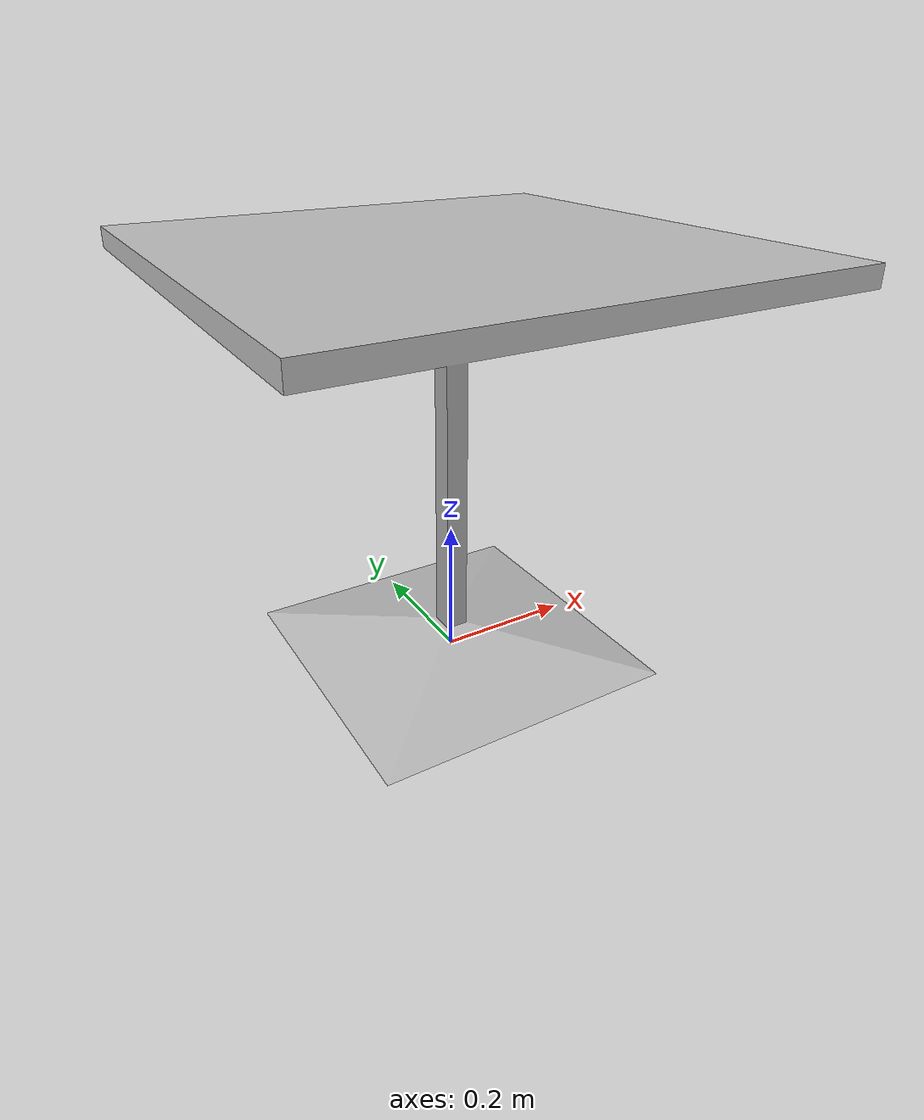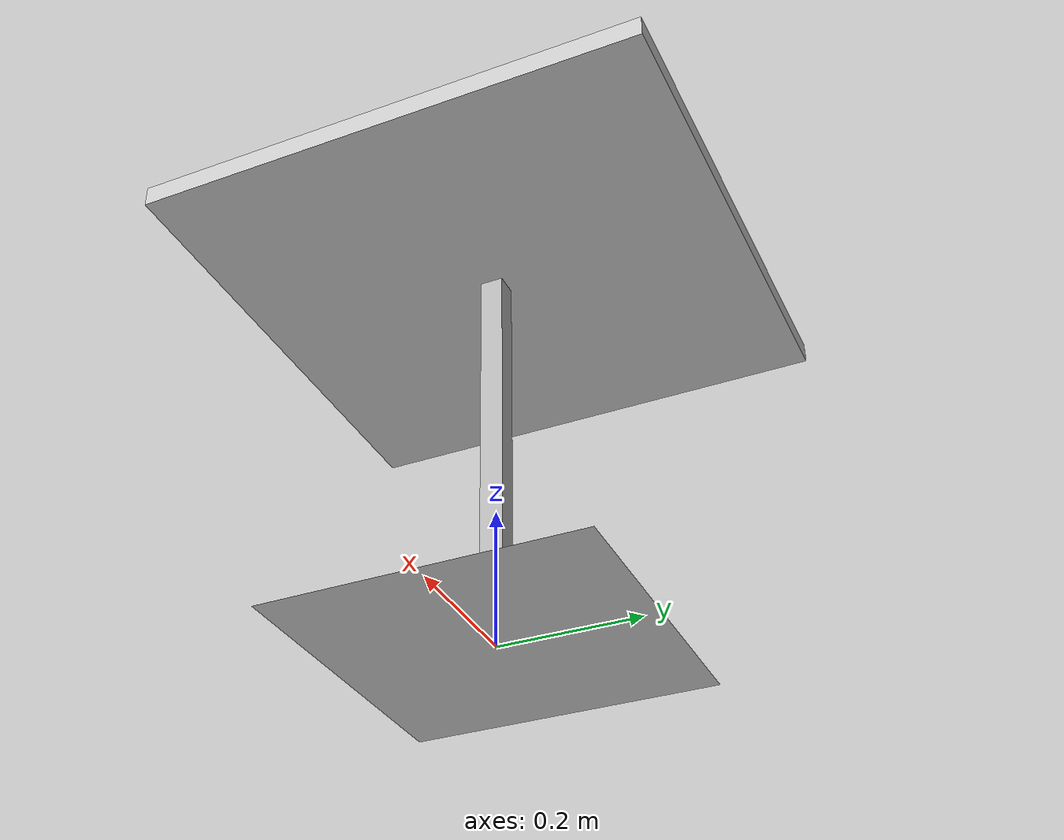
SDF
<?xml version="1.0" ?>
<sdf version="1.5">
  <model name="cafe_table">
    <static>true</static>
    <link name="link">

      <inertial>
      <mass value="20"/>
	<inertia
	  ixx="1"
	  ixy="0.0"
	  ixz="0.0"
	  iyy="1"
	  iyz="0.0"
	  izz="1" />
      </inertial>

      <collision name="collision">
        <geometry>
          <mesh>
            <scale>0.8 0.8 0.8</scale>
            <uri>model://cafe_table/meshes/cafe_table.dae</uri>
          </mesh>
        </geometry>
      </collision>

      <visual name="visual">
        <geometry>
          <mesh>
	    <scale>0.8 0.8 0.8</scale>
            <uri>model://cafe_table/meshes/cafe_table.dae</uri>
          </mesh>
        </geometry>
      </visual>

    </link>
  </model>
</sdf>
